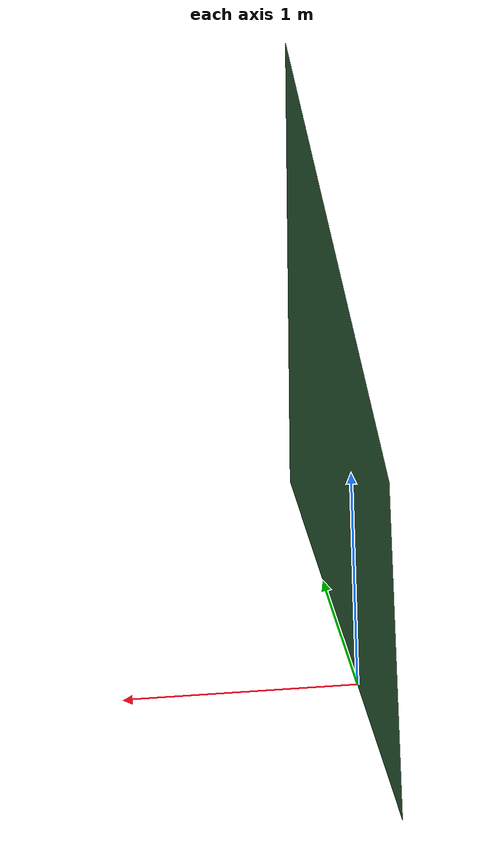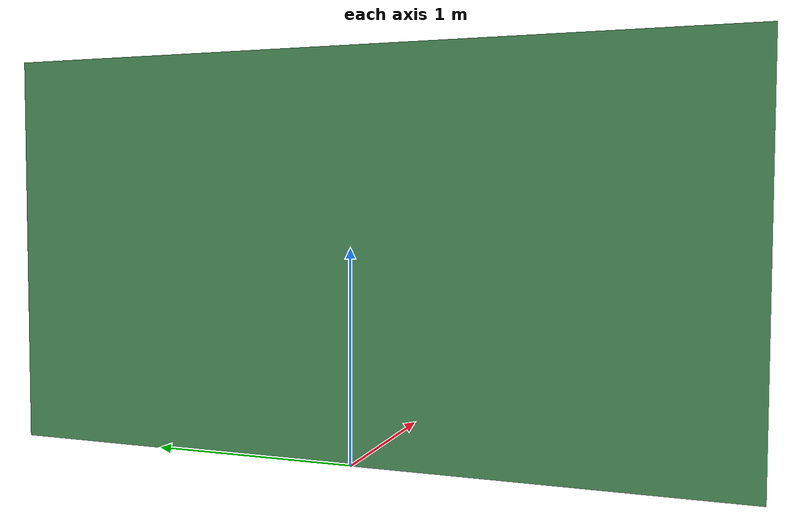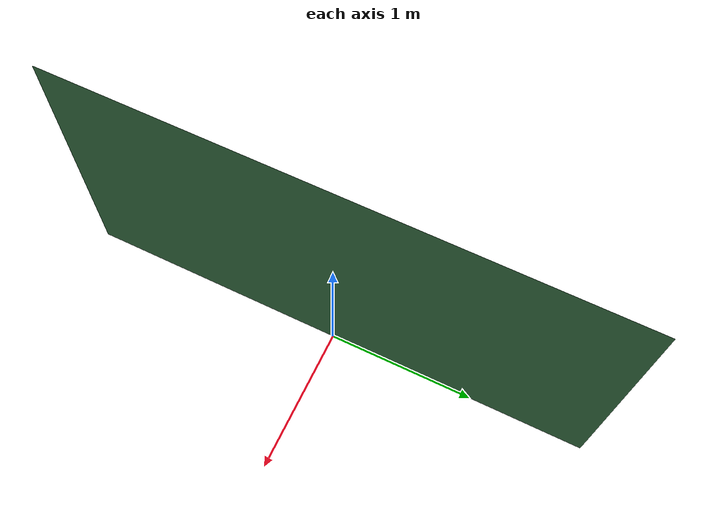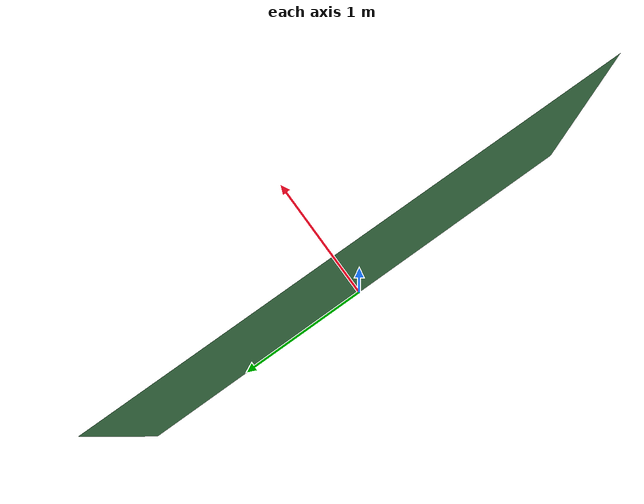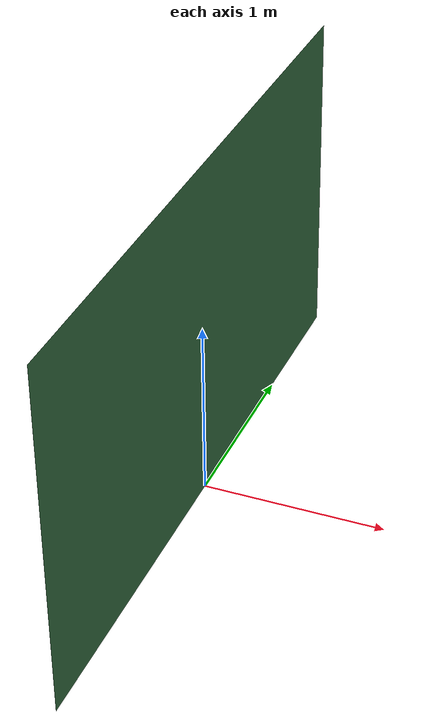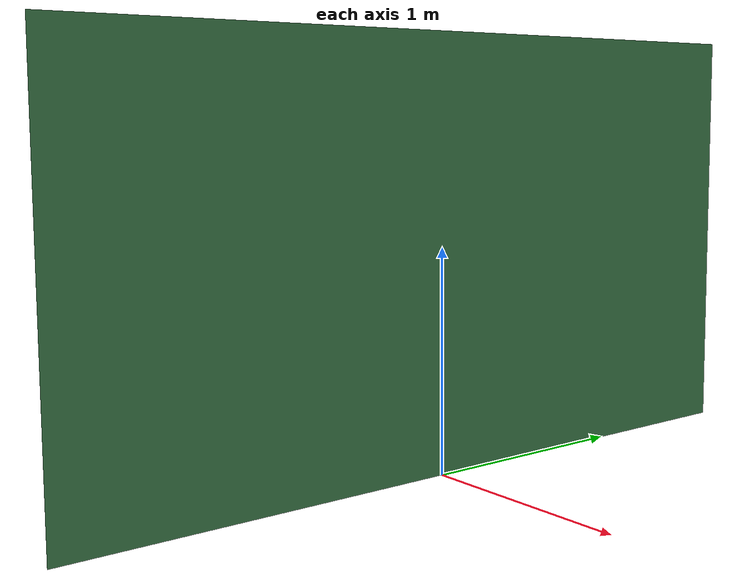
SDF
<?xml version="1.0" ?>
<sdf version="1.5">
  <model name="east_wall">
    <static>true</static>
    <link name="east_wall_link">
      <collision name="east_collision">
        <pose>0 0 1 0 1.5708 3.14</pose>
        <geometry>
          <box>
            <size>1.92 3.55 0.3</size>
          </box>
        </geometry>
        <surface>
          <friction>
            <ode>
              <mu>100</mu>
              <mu2>50</mu2>
            </ode>
          </friction>
        </surface>
      </collision>
      <visual name="east_visual">
        <cast_shadows>false</cast_shadows>
        <geometry>
            <mesh>
                <uri>model://wallEast/meshes/wall-east.dae</uri>
            </mesh>
        </geometry>
	    <material>
          <script>
            <uri>model://wallEast/materials/scripts</uri>
            <uri>model://wallEast/materials/textures</uri>
            <name>wallEastMat/Diffuse</name>
          </script>
        </material>
      </visual>
    </link>
  </model>
</sdf>
